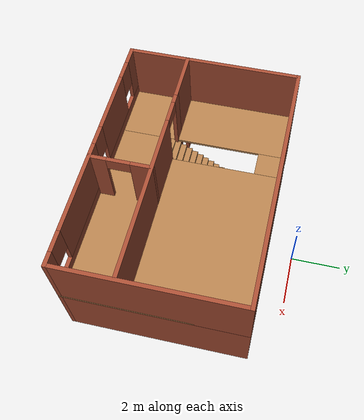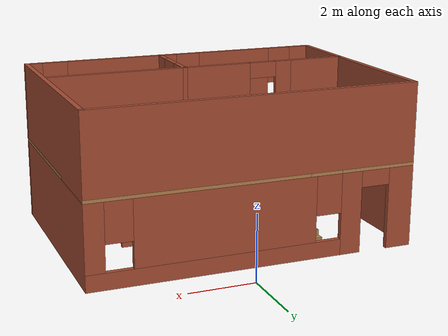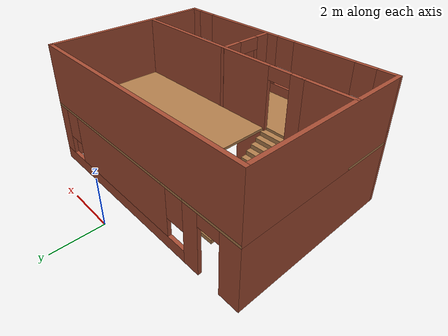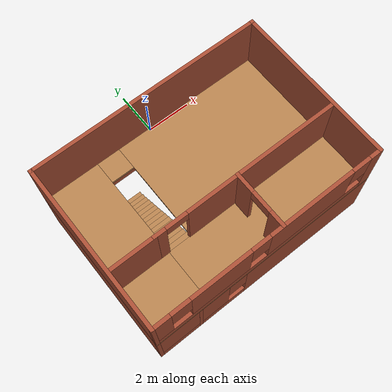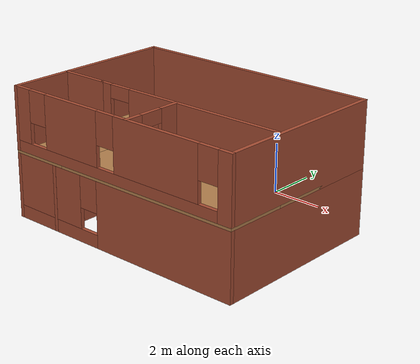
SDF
<?xml version='1.0'?>
<sdf version='1.6'>
  <model name='first-building'>
    <pose frame=''>-0.475 -4.50523 0 0 -0 0</pose>
    <link name='Floor_4'>
      <pose frame=''>0 0.000225 2.5 0 -0 0</pose>
      <visual name='Floor_4_Visual_0'>
        <pose frame=''>-3.82169 0 0.05 0 -0 0</pose>
        <geometry>
          <box>
            <size>2.35661 7.0009 0.1</size>
          </box>
        </geometry>
        <material>
          <script>
            <uri>file://media/materials/scripts/gazebo.material</uri>
            <name>Gazebo/Wood</name>
          </script>
          <ambient>1 1 1 1</ambient>
        </material>
        <meta>
          <layer>1</layer>
        </meta>
      </visual>
      <collision name='Floor_4_Collision_0'>
        <geometry>
          <box>
            <size>2.35661 7.0009 0.1</size>
          </box>
        </geometry>
        <pose frame=''>-3.82169 0 0.05 0 -0 0</pose>
      </collision>
      <visual name='Floor_4_Visual_1'>
        <pose frame=''>1.17831 -2.30879 0.05 0 -0 0</pose>
        <geometry>
          <box>
            <size>7.64339 2.38332 0.1</size>
          </box>
        </geometry>
        <material>
          <script>
            <uri>file://media/materials/scripts/gazebo.material</uri>
            <name>Gazebo/Wood</name>
          </script>
          <ambient>1 1 1 1</ambient>
        </material>
        <meta>
          <layer>1</layer>
        </meta>
      </visual>
      <collision name='Floor_4_Collision_1'>
        <geometry>
          <box>
            <size>7.64339 2.38332 0.1</size>
          </box>
        </geometry>
        <pose frame=''>1.17831 -2.30879 0.05 0 -0 0</pose>
      </collision>
      <visual name='Floor_4_Visual_2'>
        <pose frame=''>1.67831 1.19166 0.05 0 -0 0</pose>
        <geometry>
          <box>
            <size>6.64339 4.61758 0.1</size>
          </box>
        </geometry>
        <material>
          <script>
            <uri>file://media/materials/scripts/gazebo.material</uri>
            <name>Gazebo/Wood</name>
          </script>
          <ambient>1 1 1 1</ambient>
        </material>
        <meta>
          <layer>1</layer>
        </meta>
      </visual>
      <collision name='Floor_4_Collision_2'>
        <geometry>
          <box>
            <size>6.64339 4.61758 0.1</size>
          </box>
        </geometry>
        <pose frame=''>1.67831 1.19166 0.05 0 -0 0</pose>
      </collision>
      <visual name='Floor_4_Visual_3'>
        <pose frame=''>-2.14339 2.94166 0.05 0 -0 0</pose>
        <geometry>
          <box>
            <size>1 1.11758 0.1</size>
          </box>
        </geometry>
        <material>
          <script>
            <uri>file://media/materials/scripts/gazebo.material</uri>
            <name>Gazebo/Wood</name>
          </script>
          <ambient>1 1 1 1</ambient>
        </material>
        <meta>
          <layer>1</layer>
        </meta>
      </visual>
      <collision name='Floor_4_Collision_3'>
        <geometry>
          <box>
            <size>1 1.11758 0.1</size>
          </box>
        </geometry>
        <pose frame=''>-2.14339 2.94166 0.05 0 -0 0</pose>
      </collision>
    </link>
    <link name='Stairs_3'>
      <visual name='Stairs_3_Visual_0'>
        <pose frame=''>-2.14339 2.26643 0.083333 0 -0 0</pose>
        <geometry>
          <box>
            <size>1 0.233333 0.166667</size>
          </box>
        </geometry>
        <material>
          <script>
            <uri>file://media/materials/scripts/gazebo.material</uri>
            <name>Gazebo/Wood</name>
          </script>
          <ambient>1 1 1 1</ambient>
        </material>
        <meta>
          <layer>0</layer>
        </meta>
      </visual>
      <collision name='Stairs_3_Collision_0'>
        <geometry>
          <box>
            <size>1 0.233333 0.166667</size>
          </box>
        </geometry>
        <pose frame=''>-2.14339 2.26643 0.083333 0 -0 0</pose>
      </collision>
      <visual name='Stairs_3_Visual_1'>
        <pose frame=''>-2.14339 2.0331 0.25 0 -0 0</pose>
        <geometry>
          <box>
            <size>1 0.233333 0.166667</size>
          </box>
        </geometry>
        <material>
          <script>
            <uri>file://media/materials/scripts/gazebo.material</uri>
            <name>Gazebo/Wood</name>
          </script>
          <ambient>1 1 1 1</ambient>
        </material>
        <meta>
          <layer>0</layer>
        </meta>
      </visual>
      <collision name='Stairs_3_Collision_1'>
        <geometry>
          <box>
            <size>1 0.233333 0.166667</size>
          </box>
        </geometry>
        <pose frame=''>-2.14339 2.0331 0.25 0 -0 0</pose>
      </collision>
      <visual name='Stairs_3_Visual_2'>
        <pose frame=''>-2.14339 1.79976 0.416667 0 -0 0</pose>
        <geometry>
          <box>
            <size>1 0.233333 0.166667</size>
          </box>
        </geometry>
        <material>
          <script>
            <uri>file://media/materials/scripts/gazebo.material</uri>
            <name>Gazebo/Wood</name>
          </script>
          <ambient>1 1 1 1</ambient>
        </material>
        <meta>
          <layer>0</layer>
        </meta>
      </visual>
      <collision name='Stairs_3_Collision_2'>
        <geometry>
          <box>
            <size>1 0.233333 0.166667</size>
          </box>
        </geometry>
        <pose frame=''>-2.14339 1.79976 0.416667 0 -0 0</pose>
      </collision>
      <visual name='Stairs_3_Visual_3'>
        <pose frame=''>-2.14339 1.56643 0.583333 0 -0 0</pose>
        <geometry>
          <box>
            <size>1 0.233333 0.166667</size>
          </box>
        </geometry>
        <material>
          <script>
            <uri>file://media/materials/scripts/gazebo.material</uri>
            <name>Gazebo/Wood</name>
          </script>
          <ambient>1 1 1 1</ambient>
        </material>
        <meta>
          <layer>0</layer>
        </meta>
      </visual>
      <collision name='Stairs_3_Collision_3'>
        <geometry>
          <box>
            <size>1 0.233333 0.166667</size>
          </box>
        </geometry>
        <pose frame=''>-2.14339 1.56643 0.583333 0 -0 0</pose>
      </collision>
      <visual name='Stairs_3_Visual_4'>
        <pose frame=''>-2.14339 1.3331 0.75 0 -0 0</pose>
        <geometry>
          <box>
            <size>1 0.233333 0.166667</size>
          </box>
        </geometry>
        <material>
          <script>
            <uri>file://media/materials/scripts/gazebo.material</uri>
            <name>Gazebo/Wood</name>
          </script>
          <ambient>1 1 1 1</ambient>
        </material>
        <meta>
          <layer>0</layer>
        </meta>
      </visual>
      <collision name='Stairs_3_Collision_4'>
        <geometry>
          <box>
            <size>1 0.233333 0.166667</size>
          </box>
        </geometry>
        <pose frame=''>-2.14339 1.3331 0.75 0 -0 0</pose>
      </collision>
      <visual name='Stairs_3_Visual_5'>
        <pose frame=''>-2.14339 1.09976 0.916667 0 -0 0</pose>
        <geometry>
          <box>
            <size>1 0.233333 0.166667</size>
          </box>
        </geometry>
        <material>
          <script>
            <uri>file://media/materials/scripts/gazebo.material</uri>
            <name>Gazebo/Wood</name>
          </script>
          <ambient>1 1 1 1</ambient>
        </material>
        <meta>
          <layer>0</layer>
        </meta>
      </visual>
      <collision name='Stairs_3_Collision_5'>
        <geometry>
          <box>
            <size>1 0.233333 0.166667</size>
          </box>
        </geometry>
        <pose frame=''>-2.14339 1.09976 0.916667 0 -0 0</pose>
      </collision>
      <visual name='Stairs_3_Visual_6'>
        <pose frame=''>-2.14339 0.86643 1.08333 0 -0 0</pose>
        <geometry>
          <box>
            <size>1 0.233333 0.166667</size>
          </box>
        </geometry>
        <material>
          <script>
            <uri>file://media/materials/scripts/gazebo.material</uri>
            <name>Gazebo/Wood</name>
          </script>
          <ambient>1 1 1 1</ambient>
        </material>
        <meta>
          <layer>0</layer>
        </meta>
      </visual>
      <collision name='Stairs_3_Collision_6'>
        <geometry>
          <box>
            <size>1 0.233333 0.166667</size>
          </box>
        </geometry>
        <pose frame=''>-2.14339 0.86643 1.08333 0 -0 0</pose>
      </collision>
      <visual name='Stairs_3_Visual_7'>
        <pose frame=''>-2.14339 0.633097 1.25 0 -0 0</pose>
        <geometry>
          <box>
            <size>1 0.233333 0.166667</size>
          </box>
        </geometry>
        <material>
          <script>
            <uri>file://media/materials/scripts/gazebo.material</uri>
            <name>Gazebo/Wood</name>
          </script>
          <ambient>1 1 1 1</ambient>
        </material>
        <meta>
          <layer>0</layer>
        </meta>
      </visual>
      <collision name='Stairs_3_Collision_7'>
        <geometry>
          <box>
            <size>1 0.233333 0.166667</size>
          </box>
        </geometry>
        <pose frame=''>-2.14339 0.633097 1.25 0 -0 0</pose>
      </collision>
      <visual name='Stairs_3_Visual_8'>
        <pose frame=''>-2.14339 0.399763 1.41667 0 -0 0</pose>
        <geometry>
          <box>
            <size>1 0.233333 0.166667</size>
          </box>
        </geometry>
        <material>
          <script>
            <uri>file://media/materials/scripts/gazebo.material</uri>
            <name>Gazebo/Wood</name>
          </script>
          <ambient>1 1 1 1</ambient>
        </material>
        <meta>
          <layer>0</layer>
        </meta>
      </visual>
      <collision name='Stairs_3_Collision_8'>
        <geometry>
          <box>
            <size>1 0.233333 0.166667</size>
          </box>
        </geometry>
        <pose frame=''>-2.14339 0.399763 1.41667 0 -0 0</pose>
      </collision>
      <visual name='Stairs_3_Visual_9'>
        <pose frame=''>-2.14339 0.16643 1.58333 0 -0 0</pose>
        <geometry>
          <box>
            <size>1 0.233333 0.166667</size>
          </box>
        </geometry>
        <material>
          <script>
            <uri>file://media/materials/scripts/gazebo.material</uri>
            <name>Gazebo/Wood</name>
          </script>
          <ambient>1 1 1 1</ambient>
        </material>
        <meta>
          <layer>0</layer>
        </meta>
      </visual>
      <collision name='Stairs_3_Collision_9'>
        <geometry>
          <box>
            <size>1 0.233333 0.166667</size>
          </box>
        </geometry>
        <pose frame=''>-2.14339 0.16643 1.58333 0 -0 0</pose>
      </collision>
      <visual name='Stairs_3_Visual_10'>
        <pose frame=''>-2.14339 -0.066903 1.75 0 -0 0</pose>
        <geometry>
          <box>
            <size>1 0.233333 0.166667</size>
          </box>
        </geometry>
        <material>
          <script>
            <uri>file://media/materials/scripts/gazebo.material</uri>
            <name>Gazebo/Wood</name>
          </script>
          <ambient>1 1 1 1</ambient>
        </material>
        <meta>
          <layer>0</layer>
        </meta>
      </visual>
      <collision name='Stairs_3_Collision_10'>
        <geometry>
          <box>
            <size>1 0.233333 0.166667</size>
          </box>
        </geometry>
        <pose frame=''>-2.14339 -0.066903 1.75 0 -0 0</pose>
      </collision>
      <visual name='Stairs_3_Visual_11'>
        <pose frame=''>-2.14339 -0.300236 1.91667 0 -0 0</pose>
        <geometry>
          <box>
            <size>1 0.233333 0.166667</size>
          </box>
        </geometry>
        <material>
          <script>
            <uri>file://media/materials/scripts/gazebo.material</uri>
            <name>Gazebo/Wood</name>
          </script>
          <ambient>1 1 1 1</ambient>
        </material>
        <meta>
          <layer>0</layer>
        </meta>
      </visual>
      <collision name='Stairs_3_Collision_11'>
        <geometry>
          <box>
            <size>1 0.233333 0.166667</size>
          </box>
        </geometry>
        <pose frame=''>-2.14339 -0.300236 1.91667 0 -0 0</pose>
      </collision>
      <visual name='Stairs_3_Visual_12'>
        <pose frame=''>-2.14339 -0.53357 2.08333 0 -0 0</pose>
        <geometry>
          <box>
            <size>1 0.233333 0.166667</size>
          </box>
        </geometry>
        <material>
          <script>
            <uri>file://media/materials/scripts/gazebo.material</uri>
            <name>Gazebo/Wood</name>
          </script>
          <ambient>1 1 1 1</ambient>
        </material>
        <meta>
          <layer>0</layer>
        </meta>
      </visual>
      <collision name='Stairs_3_Collision_12'>
        <geometry>
          <box>
            <size>1 0.233333 0.166667</size>
          </box>
        </geometry>
        <pose frame=''>-2.14339 -0.53357 2.08333 0 -0 0</pose>
      </collision>
      <visual name='Stairs_3_Visual_13'>
        <pose frame=''>-2.14339 -0.766903 2.25 0 -0 0</pose>
        <geometry>
          <box>
            <size>1 0.233333 0.166667</size>
          </box>
        </geometry>
        <material>
          <script>
            <uri>file://media/materials/scripts/gazebo.material</uri>
            <name>Gazebo/Wood</name>
          </script>
          <ambient>1 1 1 1</ambient>
        </material>
        <meta>
          <layer>0</layer>
        </meta>
      </visual>
      <collision name='Stairs_3_Collision_13'>
        <geometry>
          <box>
            <size>1 0.233333 0.166667</size>
          </box>
        </geometry>
        <pose frame=''>-2.14339 -0.766903 2.25 0 -0 0</pose>
      </collision>
      <visual name='Stairs_3_Visual_14'>
        <pose frame=''>-2.14339 -1.00024 2.41667 0 -0 0</pose>
        <geometry>
          <box>
            <size>1 0.233333 0.166667</size>
          </box>
        </geometry>
        <material>
          <script>
            <uri>file://media/materials/scripts/gazebo.material</uri>
            <name>Gazebo/Wood</name>
          </script>
          <ambient>1 1 1 1</ambient>
        </material>
        <meta>
          <layer>0</layer>
        </meta>
      </visual>
      <collision name='Stairs_3_Collision_14'>
        <geometry>
          <box>
            <size>1 0.233333 0.166667</size>
          </box>
        </geometry>
        <pose frame=''>-2.14339 -1.00024 2.41667 0 -0 0</pose>
      </collision>
    </link>
    <link name='Wall_0'>
      <pose frame=''>0 3.42523 0 0 -0 0</pose>
      <visual name='Wall_0_Visual_0'>
        <pose frame=''>-4.59757 0 1.25 0 -0 0</pose>
        <geometry>
          <box>
            <size>0.804855 0.15 2.5</size>
          </box>
        </geometry>
        <material>
          <script>
            <uri>file://media/materials/scripts/gazebo.material</uri>
            <name>Gazebo/Bricks</name>
          </script>
          <ambient>0.913725 0.72549 0.431373 1</ambient>
        </material>
        <meta>
          <layer>0</layer>
        </meta>
      </visual>
      <collision name='Wall_0_Collision_0'>
        <geometry>
          <box>
            <size>0.804855 0.15 2.5</size>
          </box>
        </geometry>
        <pose frame=''>-4.59757 0 1.25 0 -0 0</pose>
      </collision>
      <visual name='Wall_0_Visual_1'>
        <pose frame=''>-2.9687 0 1.25 0 -0 0</pose>
        <geometry>
          <box>
            <size>0.652883 0.15 2.5</size>
          </box>
        </geometry>
        <material>
          <script>
            <uri>file://media/materials/scripts/gazebo.material</uri>
            <name>Gazebo/Bricks</name>
          </script>
          <ambient>0.913725 0.72549 0.431373 1</ambient>
        </material>
        <meta>
          <layer>0</layer>
        </meta>
      </visual>
      <collision name='Wall_0_Collision_1'>
        <geometry>
          <box>
            <size>0.652883 0.15 2.5</size>
          </box>
        </geometry>
        <pose frame=''>-2.9687 0 1.25 0 -0 0</pose>
      </collision>
      <visual name='Wall_0_Visual_2'>
        <pose frame=''>1.17887 0 0.25 0 -0 0</pose>
        <geometry>
          <box>
            <size>7.64226 0.15 0.5</size>
          </box>
        </geometry>
        <material>
          <script>
            <uri>file://media/materials/scripts/gazebo.material</uri>
            <name>Gazebo/Bricks</name>
          </script>
          <ambient>0.913725 0.72549 0.431373 1</ambient>
        </material>
        <meta>
          <layer>0</layer>
        </meta>
      </visual>
      <collision name='Wall_0_Collision_2'>
        <geometry>
          <box>
            <size>7.64226 0.15 0.5</size>
          </box>
        </geometry>
        <pose frame=''>1.17887 0 0.25 0 -0 0</pose>
      </collision>
      <visual name='Wall_0_Visual_3'>
        <pose frame=''>0.89204 0 1.5 0 -0 0</pose>
        <geometry>
          <box>
            <size>5.4686 0.15 2</size>
          </box>
        </geometry>
        <material>
          <script>
            <uri>file://media/materials/scripts/gazebo.material</uri>
            <name>Gazebo/Bricks</name>
          </script>
          <ambient>0.913725 0.72549 0.431373 1</ambient>
        </material>
        <meta>
          <layer>0</layer>
        </meta>
      </visual>
      <collision name='Wall_0_Collision_3'>
        <geometry>
          <box>
            <size>5.4686 0.15 2</size>
          </box>
        </geometry>
        <pose frame=''>0.89204 0 1.5 0 -0 0</pose>
      </collision>
      <visual name='Wall_0_Visual_4'>
        <pose frame=''>4.71317 0 1.5 0 -0 0</pose>
        <geometry>
          <box>
            <size>0.573658 0.15 2</size>
          </box>
        </geometry>
        <material>
          <script>
            <uri>file://media/materials/scripts/gazebo.material</uri>
            <name>Gazebo/Bricks</name>
          </script>
          <ambient>0.913725 0.72549 0.431373 1</ambient>
        </material>
        <meta>
          <layer>0</layer>
        </meta>
      </visual>
      <collision name='Wall_0_Collision_4'>
        <geometry>
          <box>
            <size>0.573658 0.15 2</size>
          </box>
        </geometry>
        <pose frame=''>4.71317 0 1.5 0 -0 0</pose>
      </collision>
      <visual name='Wall_0_Visual_5'>
        <pose frame=''>-2.24226 0 1.9 0 -0 0</pose>
        <geometry>
          <box>
            <size>0.8 0.15 1.2</size>
          </box>
        </geometry>
        <material>
          <script>
            <uri>file://media/materials/scripts/gazebo.material</uri>
            <name>Gazebo/Bricks</name>
          </script>
          <ambient>0.913725 0.72549 0.431373 1</ambient>
        </material>
        <meta>
          <layer>0</layer>
        </meta>
      </visual>
      <collision name='Wall_0_Collision_5'>
        <geometry>
          <box>
            <size>0.8 0.15 1.2</size>
          </box>
        </geometry>
        <pose frame=''>-2.24226 0 1.9 0 -0 0</pose>
      </collision>
      <visual name='Wall_0_Visual_6'>
        <pose frame=''>4.02634 0 1.9 0 -0 0</pose>
        <geometry>
          <box>
            <size>0.8 0.15 1.2</size>
          </box>
        </geometry>
        <material>
          <script>
            <uri>file://media/materials/scripts/gazebo.material</uri>
            <name>Gazebo/Bricks</name>
          </script>
          <ambient>0.913725 0.72549 0.431373 1</ambient>
        </material>
        <meta>
          <layer>0</layer>
        </meta>
      </visual>
      <collision name='Wall_0_Collision_6'>
        <geometry>
          <box>
            <size>0.8 0.15 1.2</size>
          </box>
        </geometry>
        <pose frame=''>4.02634 0 1.9 0 -0 0</pose>
      </collision>
      <visual name='Wall_0_Visual_7'>
        <pose frame=''>-3.74514 0 2.25 0 -0 0</pose>
        <geometry>
          <box>
            <size>0.9 0.15 0.5</size>
          </box>
        </geometry>
        <material>
          <script>
            <uri>file://media/materials/scripts/gazebo.material</uri>
            <name>Gazebo/Bricks</name>
          </script>
          <ambient>0.913725 0.72549 0.431373 1</ambient>
        </material>
        <meta>
          <layer>0</layer>
        </meta>
      </visual>
      <collision name='Wall_0_Collision_7'>
        <geometry>
          <box>
            <size>0.9 0.15 0.5</size>
          </box>
        </geometry>
        <pose frame=''>-3.74514 0 2.25 0 -0 0</pose>
      </collision>
    </link>
    <link name='Wall_2'>
      <collision name='Wall_2_Collision'>
        <geometry>
          <box>
            <size>7 0.15 2.5</size>
          </box>
        </geometry>
        <pose frame=''>0 0 1.25 0 -0 0</pose>
      </collision>
      <visual name='Wall_2_Visual'>
        <pose frame=''>0 0 1.25 0 -0 0</pose>
        <geometry>
          <box>
            <size>7 0.15 2.5</size>
          </box>
        </geometry>
        <material>
          <script>
            <uri>file://media/materials/scripts/gazebo.material</uri>
            <name>Gazebo/Bricks</name>
          </script>
          <ambient>1 0.764706 0.305882 1</ambient>
        </material>
        <meta>
          <layer>0</layer>
        </meta>
      </visual>
      <pose frame=''>4.925 0.000225 0 0 -0 -1.5708</pose>
    </link>
    <link name='Wall_3'>
      <pose frame=''>0 -3.42477 0 0 -0 3.14159</pose>
      <visual name='Wall_3_Visual_0'>
        <pose frame=''>-2.02749 0 1.25 0 -0 0</pose>
        <geometry>
          <box>
            <size>5.94502 0.15 2.5</size>
          </box>
        </geometry>
        <material>
          <script>
            <uri>file://media/materials/scripts/gazebo.material</uri>
            <name>Gazebo/Bricks</name>
          </script>
          <ambient>0.913725 0.72549 0.431373 1</ambient>
        </material>
        <meta>
          <layer>0</layer>
        </meta>
      </visual>
      <collision name='Wall_3_Collision_0'>
        <geometry>
          <box>
            <size>5.94502 0.15 2.5</size>
          </box>
        </geometry>
        <pose frame=''>-2.02749 0 1.25 0 -0 0</pose>
      </collision>
      <visual name='Wall_3_Visual_1'>
        <pose frame=''>2.97251 0 0.25 0 -0 0</pose>
        <geometry>
          <box>
            <size>4.05498 0.15 0.5</size>
          </box>
        </geometry>
        <material>
          <script>
            <uri>file://media/materials/scripts/gazebo.material</uri>
            <name>Gazebo/Bricks</name>
          </script>
          <ambient>0.913725 0.72549 0.431373 1</ambient>
        </material>
        <meta>
          <layer>0</layer>
        </meta>
      </visual>
      <collision name='Wall_3_Collision_1'>
        <geometry>
          <box>
            <size>4.05498 0.15 0.5</size>
          </box>
        </geometry>
        <pose frame=''>2.97251 0 0.25 0 -0 0</pose>
      </collision>
      <visual name='Wall_3_Visual_2'>
        <pose frame=''>3.37251 0 1.5 0 -0 0</pose>
        <geometry>
          <box>
            <size>3.25498 0.15 2</size>
          </box>
        </geometry>
        <material>
          <script>
            <uri>file://media/materials/scripts/gazebo.material</uri>
            <name>Gazebo/Bricks</name>
          </script>
          <ambient>0.913725 0.72549 0.431373 1</ambient>
        </material>
        <meta>
          <layer>0</layer>
        </meta>
      </visual>
      <collision name='Wall_3_Collision_2'>
        <geometry>
          <box>
            <size>3.25498 0.15 2</size>
          </box>
        </geometry>
        <pose frame=''>3.37251 0 1.5 0 -0 0</pose>
      </collision>
      <visual name='Wall_3_Visual_3'>
        <pose frame=''>1.34502 0 1.9 0 -0 0</pose>
        <geometry>
          <box>
            <size>0.8 0.15 1.2</size>
          </box>
        </geometry>
        <material>
          <script>
            <uri>file://media/materials/scripts/gazebo.material</uri>
            <name>Gazebo/Bricks</name>
          </script>
          <ambient>0.913725 0.72549 0.431373 1</ambient>
        </material>
        <meta>
          <layer>0</layer>
        </meta>
      </visual>
      <collision name='Wall_3_Collision_3'>
        <geometry>
          <box>
            <size>0.8 0.15 1.2</size>
          </box>
        </geometry>
        <pose frame=''>1.34502 0 1.9 0 -0 0</pose>
      </collision>
    </link>
    <link name='Wall_4'>
      <collision name='Wall_4_Collision'>
        <geometry>
          <box>
            <size>7 0.15 2.5</size>
          </box>
        </geometry>
        <pose frame=''>0 0 1.25 0 -0 0</pose>
      </collision>
      <visual name='Wall_4_Visual'>
        <pose frame=''>0 0 1.25 0 -0 0</pose>
        <geometry>
          <box>
            <size>7 0.15 2.5</size>
          </box>
        </geometry>
        <material>
          <script>
            <uri>file://media/materials/scripts/gazebo.material</uri>
            <name>Gazebo/Bricks</name>
          </script>
          <ambient>0.913725 0.72549 0.431373 1</ambient>
        </material>
        <meta>
          <layer>0</layer>
        </meta>
      </visual>
      <pose frame=''>-4.925 0.000225 0 0 -0 1.5708</pose>
    </link>
    <link name='Wall_40'>
      <collision name='Wall_40_Collision'>
        <geometry>
          <box>
            <size>10 0.15 2.5</size>
          </box>
        </geometry>
        <pose frame=''>0 0 1.25 0 -0 0</pose>
      </collision>
      <visual name='Wall_40_Visual'>
        <pose frame=''>0 0 1.25 0 -0 0</pose>
        <geometry>
          <box>
            <size>10 0.15 2.5</size>
          </box>
        </geometry>
        <material>
          <script>
            <uri>file://media/materials/scripts/gazebo.material</uri>
            <name>Gazebo/Bricks</name>
          </script>
          <ambient>1 1 1 1</ambient>
        </material>
        <meta>
          <layer>1</layer>
        </meta>
      </visual>
      <pose frame=''>0 3.42523 2.5 0 -0 0</pose>
    </link>
    <link name='Wall_41'>
      <collision name='Wall_41_Collision'>
        <geometry>
          <box>
            <size>7 0.15 2.5</size>
          </box>
        </geometry>
        <pose frame=''>0 0 1.25 0 -0 0</pose>
      </collision>
      <visual name='Wall_41_Visual'>
        <pose frame=''>0 0 1.25 0 -0 0</pose>
        <geometry>
          <box>
            <size>7 0.15 2.5</size>
          </box>
        </geometry>
        <material>
          <script>
            <uri>file://media/materials/scripts/gazebo.material</uri>
            <name>Gazebo/Bricks</name>
          </script>
          <ambient>1 1 1 1</ambient>
        </material>
        <meta>
          <layer>1</layer>
        </meta>
      </visual>
      <pose frame=''>4.925 0.000225 2.5 0 -0 -1.5708</pose>
    </link>
    <link name='Wall_42'>
      <pose frame=''>0 -3.42477 2.5 0 -0 3.14159</pose>
      <visual name='Wall_42_Visual_0'>
        <pose frame=''>-4.71993 0 1.25 0 -0 0</pose>
        <geometry>
          <box>
            <size>0.560138 0.15 2.5</size>
          </box>
        </geometry>
        <material>
          <script>
            <uri>file://media/materials/scripts/gazebo.material</uri>
            <name>Gazebo/Bricks</name>
          </script>
          <ambient>1 1 1 1</ambient>
        </material>
        <meta>
          <layer>1</layer>
        </meta>
      </visual>
      <collision name='Wall_42_Collision_0'>
        <geometry>
          <box>
            <size>0.560138 0.15 2.5</size>
          </box>
        </geometry>
        <pose frame=''>-4.71993 0 1.25 0 -0 0</pose>
      </collision>
      <visual name='Wall_42_Visual_1'>
        <pose frame=''>0.280069 0 0.25 0 -0 0</pose>
        <geometry>
          <box>
            <size>9.43986 0.15 0.5</size>
          </box>
        </geometry>
        <material>
          <script>
            <uri>file://media/materials/scripts/gazebo.material</uri>
            <name>Gazebo/Bricks</name>
          </script>
          <ambient>1 1 1 1</ambient>
        </material>
        <meta>
          <layer>1</layer>
        </meta>
      </visual>
      <collision name='Wall_42_Collision_1'>
        <geometry>
          <box>
            <size>9.43986 0.15 0.5</size>
          </box>
        </geometry>
        <pose frame=''>0.280069 0 0.25 0 -0 0</pose>
      </collision>
      <visual name='Wall_42_Visual_2'>
        <pose frame=''>-1.7885 0 1.5 0 -0 0</pose>
        <geometry>
          <box>
            <size>3.70272 0.15 2</size>
          </box>
        </geometry>
        <material>
          <script>
            <uri>file://media/materials/scripts/gazebo.material</uri>
            <name>Gazebo/Bricks</name>
          </script>
          <ambient>1 1 1 1</ambient>
        </material>
        <meta>
          <layer>1</layer>
        </meta>
      </visual>
      <collision name='Wall_42_Collision_2'>
        <geometry>
          <box>
            <size>3.70272 0.15 2</size>
          </box>
        </geometry>
        <pose frame=''>-1.7885 0 1.5 0 -0 0</pose>
      </collision>
      <visual name='Wall_42_Visual_3'>
        <pose frame=''>2.13432 0 1.5 0 -0 0</pose>
        <geometry>
          <box>
            <size>2.54293 0.15 2</size>
          </box>
        </geometry>
        <material>
          <script>
            <uri>file://media/materials/scripts/gazebo.material</uri>
            <name>Gazebo/Bricks</name>
          </script>
          <ambient>1 1 1 1</ambient>
        </material>
        <meta>
          <layer>1</layer>
        </meta>
      </visual>
      <collision name='Wall_42_Collision_3'>
        <geometry>
          <box>
            <size>2.54293 0.15 2</size>
          </box>
        </geometry>
        <pose frame=''>2.13432 0 1.5 0 -0 0</pose>
      </collision>
      <visual name='Wall_42_Visual_4'>
        <pose frame=''>4.60289 0 1.5 0 -0 0</pose>
        <geometry>
          <box>
            <size>0.79422 0.15 2</size>
          </box>
        </geometry>
        <material>
          <script>
            <uri>file://media/materials/scripts/gazebo.material</uri>
            <name>Gazebo/Bricks</name>
          </script>
          <ambient>1 1 1 1</ambient>
        </material>
        <meta>
          <layer>1</layer>
        </meta>
      </visual>
      <collision name='Wall_42_Collision_4'>
        <geometry>
          <box>
            <size>0.79422 0.15 2</size>
          </box>
        </geometry>
        <pose frame=''>4.60289 0 1.5 0 -0 0</pose>
      </collision>
      <visual name='Wall_42_Visual_5'>
        <pose frame=''>-4.03986 0 1.9 0 -0 0</pose>
        <geometry>
          <box>
            <size>0.8 0.15 1.2</size>
          </box>
        </geometry>
        <material>
          <script>
            <uri>file://media/materials/scripts/gazebo.material</uri>
            <name>Gazebo/Bricks</name>
          </script>
          <ambient>1 1 1 1</ambient>
        </material>
        <meta>
          <layer>1</layer>
        </meta>
      </visual>
      <collision name='Wall_42_Collision_5'>
        <geometry>
          <box>
            <size>0.8 0.15 1.2</size>
          </box>
        </geometry>
        <pose frame=''>-4.03986 0 1.9 0 -0 0</pose>
      </collision>
      <visual name='Wall_42_Visual_6'>
        <pose frame=''>0.462854 0 1.9 0 -0 0</pose>
        <geometry>
          <box>
            <size>0.8 0.15 1.2</size>
          </box>
        </geometry>
        <material>
          <script>
            <uri>file://media/materials/scripts/gazebo.material</uri>
            <name>Gazebo/Bricks</name>
          </script>
          <ambient>1 1 1 1</ambient>
        </material>
        <meta>
          <layer>1</layer>
        </meta>
      </visual>
      <collision name='Wall_42_Collision_6'>
        <geometry>
          <box>
            <size>0.8 0.15 1.2</size>
          </box>
        </geometry>
        <pose frame=''>0.462854 0 1.9 0 -0 0</pose>
      </collision>
      <visual name='Wall_42_Visual_7'>
        <pose frame=''>3.80578 0 1.9 0 -0 0</pose>
        <geometry>
          <box>
            <size>0.8 0.15 1.2</size>
          </box>
        </geometry>
        <material>
          <script>
            <uri>file://media/materials/scripts/gazebo.material</uri>
            <name>Gazebo/Bricks</name>
          </script>
          <ambient>1 1 1 1</ambient>
        </material>
        <meta>
          <layer>1</layer>
        </meta>
      </visual>
      <collision name='Wall_42_Collision_7'>
        <geometry>
          <box>
            <size>0.8 0.15 1.2</size>
          </box>
        </geometry>
        <pose frame=''>3.80578 0 1.9 0 -0 0</pose>
      </collision>
    </link>
    <link name='Wall_43'>
      <collision name='Wall_43_Collision'>
        <geometry>
          <box>
            <size>7 0.15 2.5</size>
          </box>
        </geometry>
        <pose frame=''>0 0 1.25 0 -0 0</pose>
      </collision>
      <visual name='Wall_43_Visual'>
        <pose frame=''>0 0 1.25 0 -0 0</pose>
        <geometry>
          <box>
            <size>7 0.15 2.5</size>
          </box>
        </geometry>
        <material>
          <script>
            <uri>file://media/materials/scripts/gazebo.material</uri>
            <name>Gazebo/Bricks</name>
          </script>
          <ambient>1 1 1 1</ambient>
        </material>
        <meta>
          <layer>1</layer>
        </meta>
      </visual>
      <pose frame=''>-4.925 0.000225 2.5 0 -0 1.5708</pose>
    </link>
    <link name='Wall_45'>
      <collision name='Wall_45_Collision'>
        <geometry>
          <box>
            <size>2 0.15 2.5</size>
          </box>
        </geometry>
        <pose frame=''>0 0 1.25 0 -0 0</pose>
      </collision>
      <visual name='Wall_45_Visual'>
        <pose frame=''>0 0 1.25 0 -0 0</pose>
        <geometry>
          <box>
            <size>2 0.15 2.5</size>
          </box>
        </geometry>
        <material>
          <script>
            <uri>file://media/materials/scripts/gazebo.material</uri>
            <name>Gazebo/Bricks</name>
          </script>
          <ambient>1 1 1 1</ambient>
        </material>
        <meta>
          <layer>1</layer>
        </meta>
      </visual>
      <pose frame=''>-3.97803 -1.07568 2.5 0 -0 3.14159</pose>
    </link>
    <link name='Wall_46'>
      <pose frame=''>0.871972 -1.07568 2.5 0 -0 0</pose>
      <visual name='Wall_46_Visual_0'>
        <pose frame=''>-3.73383 0 1.25 0 -0 0</pose>
        <geometry>
          <box>
            <size>0.53234 0.15 2.5</size>
          </box>
        </geometry>
        <material>
          <script>
            <uri>file://media/materials/scripts/gazebo.material</uri>
            <name>Gazebo/Bricks</name>
          </script>
          <ambient>1 1 1 1</ambient>
        </material>
        <meta>
          <layer>1</layer>
        </meta>
      </visual>
      <collision name='Wall_46_Collision_0'>
        <geometry>
          <box>
            <size>0.53234 0.15 2.5</size>
          </box>
        </geometry>
        <pose frame=''>-3.73383 0 1.25 0 -0 0</pose>
      </collision>
      <visual name='Wall_46_Visual_1'>
        <pose frame=''>0.71617 0 1.25 0 -0 0</pose>
        <geometry>
          <box>
            <size>6.56766 0.15 2.5</size>
          </box>
        </geometry>
        <material>
          <script>
            <uri>file://media/materials/scripts/gazebo.material</uri>
            <name>Gazebo/Bricks</name>
          </script>
          <ambient>1 1 1 1</ambient>
        </material>
        <meta>
          <layer>1</layer>
        </meta>
      </visual>
      <collision name='Wall_46_Collision_1'>
        <geometry>
          <box>
            <size>6.56766 0.15 2.5</size>
          </box>
        </geometry>
        <pose frame=''>0.71617 0 1.25 0 -0 0</pose>
      </collision>
      <visual name='Wall_46_Visual_2'>
        <pose frame=''>-3.01766 0 2.25 0 -0 0</pose>
        <geometry>
          <box>
            <size>0.9 0.15 0.5</size>
          </box>
        </geometry>
        <material>
          <script>
            <uri>file://media/materials/scripts/gazebo.material</uri>
            <name>Gazebo/Bricks</name>
          </script>
          <ambient>1 1 1 1</ambient>
        </material>
        <meta>
          <layer>1</layer>
        </meta>
      </visual>
      <collision name='Wall_46_Collision_2'>
        <geometry>
          <box>
            <size>0.9 0.15 0.5</size>
          </box>
        </geometry>
        <pose frame=''>-3.01766 0 2.25 0 -0 0</pose>
      </collision>
    </link>
    <link name='Wall_50'>
      <pose frame=''>0.492267 -2.24361 2.5 0 -0 -1.5708</pose>
      <visual name='Wall_50_Visual_0'>
        <pose frame=''>-0.812123 0 1.25 0 -0 0</pose>
        <geometry>
          <box>
            <size>0.875755 0.15 2.5</size>
          </box>
        </geometry>
        <material>
          <script>
            <uri>file://media/materials/scripts/gazebo.material</uri>
            <name>Gazebo/Bricks</name>
          </script>
          <ambient>1 1 1 1</ambient>
        </material>
        <meta>
          <layer>1</layer>
        </meta>
      </visual>
      <collision name='Wall_50_Collision_0'>
        <geometry>
          <box>
            <size>0.875755 0.15 2.5</size>
          </box>
        </geometry>
        <pose frame=''>-0.812123 0 1.25 0 -0 0</pose>
      </collision>
      <visual name='Wall_50_Visual_1'>
        <pose frame=''>0.887877 0 1.25 0 -0 0</pose>
        <geometry>
          <box>
            <size>0.724245 0.15 2.5</size>
          </box>
        </geometry>
        <material>
          <script>
            <uri>file://media/materials/scripts/gazebo.material</uri>
            <name>Gazebo/Bricks</name>
          </script>
          <ambient>1 1 1 1</ambient>
        </material>
        <meta>
          <layer>1</layer>
        </meta>
      </visual>
      <collision name='Wall_50_Collision_1'>
        <geometry>
          <box>
            <size>0.724245 0.15 2.5</size>
          </box>
        </geometry>
        <pose frame=''>0.887877 0 1.25 0 -0 0</pose>
      </collision>
      <visual name='Wall_50_Visual_2'>
        <pose frame=''>0.075755 0 2.25 0 -0 0</pose>
        <geometry>
          <box>
            <size>0.9 0.15 0.5</size>
          </box>
        </geometry>
        <material>
          <script>
            <uri>file://media/materials/scripts/gazebo.material</uri>
            <name>Gazebo/Bricks</name>
          </script>
          <ambient>1 1 1 1</ambient>
        </material>
        <meta>
          <layer>1</layer>
        </meta>
      </visual>
      <collision name='Wall_50_Collision_2'>
        <geometry>
          <box>
            <size>0.9 0.15 0.5</size>
          </box>
        </geometry>
        <pose frame=''>0.075755 0 2.25 0 -0 0</pose>
      </collision>
    </link>
    <link name='Wall_54'>
      <pose frame=''>0.871972 -1.07568 0 0 -0 0</pose>
      <visual name='Wall_54_Visual_0'>
        <pose frame=''>-2.63638 0 1.25 0 -0 0</pose>
        <geometry>
          <box>
            <size>2.72725 0.15 2.5</size>
          </box>
        </geometry>
        <material>
          <script>
            <uri>file://media/materials/scripts/gazebo.material</uri>
            <name>Gazebo/Bricks</name>
          </script>
          <ambient>0.533333 0.541176 0.521569 1</ambient>
        </material>
        <meta>
          <layer>0</layer>
        </meta>
      </visual>
      <collision name='Wall_54_Collision_0'>
        <geometry>
          <box>
            <size>2.72725 0.15 2.5</size>
          </box>
        </geometry>
        <pose frame=''>-2.63638 0 1.25 0 -0 0</pose>
      </collision>
      <visual name='Wall_54_Visual_1'>
        <pose frame=''>0.951847 0 1.25 0 -0 0</pose>
        <geometry>
          <box>
            <size>2.64919 0.15 2.5</size>
          </box>
        </geometry>
        <material>
          <script>
            <uri>file://media/materials/scripts/gazebo.material</uri>
            <name>Gazebo/Bricks</name>
          </script>
          <ambient>0.533333 0.541176 0.521569 1</ambient>
        </material>
        <meta>
          <layer>0</layer>
        </meta>
      </visual>
      <collision name='Wall_54_Collision_1'>
        <geometry>
          <box>
            <size>2.64919 0.15 2.5</size>
          </box>
        </geometry>
        <pose frame=''>0.951847 0 1.25 0 -0 0</pose>
      </collision>
      <visual name='Wall_54_Visual_2'>
        <pose frame=''>3.58822 0 1.25 0 -0 0</pose>
        <geometry>
          <box>
            <size>0.823556 0.15 2.5</size>
          </box>
        </geometry>
        <material>
          <script>
            <uri>file://media/materials/scripts/gazebo.material</uri>
            <name>Gazebo/Bricks</name>
          </script>
          <ambient>0.533333 0.541176 0.521569 1</ambient>
        </material>
        <meta>
          <layer>0</layer>
        </meta>
      </visual>
      <collision name='Wall_54_Collision_2'>
        <geometry>
          <box>
            <size>0.823556 0.15 2.5</size>
          </box>
        </geometry>
        <pose frame=''>3.58822 0 1.25 0 -0 0</pose>
      </collision>
      <visual name='Wall_54_Visual_3'>
        <pose frame=''>-0.822749 0 2.25 0 -0 0</pose>
        <geometry>
          <box>
            <size>0.9 0.15 0.5</size>
          </box>
        </geometry>
        <material>
          <script>
            <uri>file://media/materials/scripts/gazebo.material</uri>
            <name>Gazebo/Bricks</name>
          </script>
          <ambient>0.533333 0.541176 0.521569 1</ambient>
        </material>
        <meta>
          <layer>0</layer>
        </meta>
      </visual>
      <collision name='Wall_54_Collision_3'>
        <geometry>
          <box>
            <size>0.9 0.15 0.5</size>
          </box>
        </geometry>
        <pose frame=''>-0.822749 0 2.25 0 -0 0</pose>
      </collision>
      <visual name='Wall_54_Visual_4'>
        <pose frame=''>2.72644 0 2.25 0 -0 0</pose>
        <geometry>
          <box>
            <size>0.9 0.15 0.5</size>
          </box>
        </geometry>
        <material>
          <script>
            <uri>file://media/materials/scripts/gazebo.material</uri>
            <name>Gazebo/Bricks</name>
          </script>
          <ambient>0.533333 0.541176 0.521569 1</ambient>
        </material>
        <meta>
          <layer>0</layer>
        </meta>
      </visual>
      <collision name='Wall_54_Collision_4'>
        <geometry>
          <box>
            <size>0.9 0.15 0.5</size>
          </box>
        </geometry>
        <pose frame=''>2.72644 0 2.25 0 -0 0</pose>
      </collision>
    </link>
    <link name='Wall_56'>
      <collision name='Wall_56_Collision'>
        <geometry>
          <box>
            <size>2.5 0.15 2.5</size>
          </box>
        </geometry>
        <pose frame=''>0 0 1.25 0 -0 0</pose>
      </collision>
      <visual name='Wall_56_Visual'>
        <pose frame=''>0 0 1.25 0 -0 0</pose>
        <geometry>
          <box>
            <size>2.5 0.15 2.5</size>
          </box>
        </geometry>
        <material>
          <script>
            <uri>file://media/materials/scripts/gazebo.material</uri>
            <name>Gazebo/Bricks</name>
          </script>
          <ambient>0.913725 0.72549 0.431373 1</ambient>
        </material>
        <meta>
          <layer>0</layer>
        </meta>
      </visual>
      <pose frame=''>1.87789 -2.24873 0 0 -0 -1.5708</pose>
    </link>
    <link name='Wall_61'>
      <collision name='Wall_61_Collision'>
        <geometry>
          <box>
            <size>0.15 0.15 2.5</size>
          </box>
        </geometry>
        <pose frame=''>0 0 1.25 0 -0 0</pose>
      </collision>
      <visual name='Wall_61_Visual'>
        <pose frame=''>0 0 1.25 0 -0 0</pose>
        <geometry>
          <box>
            <size>0.15 0.15 2.5</size>
          </box>
        </geometry>
        <material>
          <script>
            <uri>file://media/materials/scripts/gazebo.material</uri>
            <name>Gazebo/Grey</name>
          </script>
          <ambient>0.913725 0.72549 0.431373 1</ambient>
        </material>
        <meta>
          <layer>0</layer>
        </meta>
      </visual>
      <pose frame=''>1.81653 1.52274 0 0 -0 0</pose>
    </link>
    <link name='Wall_65'>
      <collision name='Wall_65_Collision'>
        <geometry>
          <box>
            <size>3 0.15 2.5</size>
          </box>
        </geometry>
        <pose frame=''>0 0 1.25 0 -0 0</pose>
      </collision>
      <visual name='Wall_65_Visual'>
        <pose frame=''>0 0 1.25 0 -0 0</pose>
        <geometry>
          <box>
            <size>3 0.15 2.5</size>
          </box>
        </geometry>
        <material>
          <script>
            <uri>file://media/materials/scripts/gazebo.material</uri>
            <name>Gazebo/Bricks</name>
          </script>
          <ambient>0.913725 0.72549 0.431373 1</ambient>
        </material>
        <meta>
          <layer>0</layer>
        </meta>
      </visual>
      <pose frame=''>1.77916 1.9327 0 0 -0 -1.5708</pose>
    </link>
    <link name='Wall_66'>
      <pose frame=''>3.32916 0.507696 0 0 -0 0</pose>
      <visual name='Wall_66_Visual_0'>
        <pose frame=''>-0.919698 0 1.25 0 -0 0</pose>
        <geometry>
          <box>
            <size>1.41061 0.15 2.5</size>
          </box>
        </geometry>
        <material>
          <script>
            <uri>file://media/materials/scripts/gazebo.material</uri>
            <name>Gazebo/Bricks</name>
          </script>
          <ambient>0.913725 0.72549 0.431373 1</ambient>
        </material>
        <meta>
          <layer>0</layer>
        </meta>
      </visual>
      <collision name='Wall_66_Collision_0'>
        <geometry>
          <box>
            <size>1.41061 0.15 2.5</size>
          </box>
        </geometry>
        <pose frame=''>-0.919698 0 1.25 0 -0 0</pose>
      </collision>
      <visual name='Wall_66_Visual_1'>
        <pose frame=''>1.1553 0 1.25 0 -0 0</pose>
        <geometry>
          <box>
            <size>0.939395 0.15 2.5</size>
          </box>
        </geometry>
        <material>
          <script>
            <uri>file://media/materials/scripts/gazebo.material</uri>
            <name>Gazebo/Bricks</name>
          </script>
          <ambient>0.913725 0.72549 0.431373 1</ambient>
        </material>
        <meta>
          <layer>0</layer>
        </meta>
      </visual>
      <collision name='Wall_66_Collision_1'>
        <geometry>
          <box>
            <size>0.939395 0.15 2.5</size>
          </box>
        </geometry>
        <pose frame=''>1.1553 0 1.25 0 -0 0</pose>
      </collision>
      <visual name='Wall_66_Visual_2'>
        <pose frame=''>0.235605 0 2.25 0 -0 0</pose>
        <geometry>
          <box>
            <size>0.9 0.15 0.5</size>
          </box>
        </geometry>
        <material>
          <script>
            <uri>file://media/materials/scripts/gazebo.material</uri>
            <name>Gazebo/Bricks</name>
          </script>
          <ambient>0.913725 0.72549 0.431373 1</ambient>
        </material>
        <meta>
          <layer>0</layer>
        </meta>
      </visual>
      <collision name='Wall_66_Collision_2'>
        <geometry>
          <box>
            <size>0.9 0.15 0.5</size>
          </box>
        </geometry>
        <pose frame=''>0.235605 0 2.25 0 -0 0</pose>
      </collision>
    </link>
    <link name='Wall_8'>
      <collision name='Wall_8_Collision'>
        <geometry>
          <box>
            <size>2.5 0.15 2.5</size>
          </box>
        </geometry>
        <pose frame=''>0 0 1.25 0 -0 0</pose>
      </collision>
      <visual name='Wall_8_Visual'>
        <pose frame=''>0 0 1.25 0 -0 0</pose>
        <geometry>
          <box>
            <size>2.5 0.15 2.5</size>
          </box>
        </geometry>
        <material>
          <script>
            <uri>file://media/materials/scripts/gazebo.material</uri>
            <name>Gazebo/Bricks</name>
          </script>
          <ambient>0.913725 0.72549 0.431373 1</ambient>
        </material>
        <meta>
          <layer>0</layer>
        </meta>
      </visual>
      <pose frame=''>-3.05303 -2.25068 0 0 -0 1.5708</pose>
    </link>
    <link name='Wall_9'>
      <pose frame=''>-3.97803 -1.07568 0 0 -0 3.14159</pose>
      <visual name='Wall_9_Visual_0'>
        <pose frame=''>-0.861216 0 1.25 0 -0 0</pose>
        <geometry>
          <box>
            <size>0.277568 0.15 2.5</size>
          </box>
        </geometry>
        <material>
          <script>
            <uri>file://media/materials/scripts/gazebo.material</uri>
            <name>Gazebo/Bricks</name>
          </script>
          <ambient>0.913725 0.72549 0.431373 1</ambient>
        </material>
        <meta>
          <layer>0</layer>
        </meta>
      </visual>
      <collision name='Wall_9_Collision_0'>
        <geometry>
          <box>
            <size>0.277568 0.15 2.5</size>
          </box>
        </geometry>
        <pose frame=''>-0.861216 0 1.25 0 -0 0</pose>
      </collision>
      <visual name='Wall_9_Visual_1'>
        <pose frame=''>0.588784 0 1.25 0 -0 0</pose>
        <geometry>
          <box>
            <size>0.822432 0.15 2.5</size>
          </box>
        </geometry>
        <material>
          <script>
            <uri>file://media/materials/scripts/gazebo.material</uri>
            <name>Gazebo/Bricks</name>
          </script>
          <ambient>0.913725 0.72549 0.431373 1</ambient>
        </material>
        <meta>
          <layer>0</layer>
        </meta>
      </visual>
      <collision name='Wall_9_Collision_1'>
        <geometry>
          <box>
            <size>0.822432 0.15 2.5</size>
          </box>
        </geometry>
        <pose frame=''>0.588784 0 1.25 0 -0 0</pose>
      </collision>
      <visual name='Wall_9_Visual_2'>
        <pose frame=''>-0.272432 0 2.25 0 -0 0</pose>
        <geometry>
          <box>
            <size>0.9 0.15 0.5</size>
          </box>
        </geometry>
        <material>
          <script>
            <uri>file://media/materials/scripts/gazebo.material</uri>
            <name>Gazebo/Bricks</name>
          </script>
          <ambient>0.913725 0.72549 0.431373 1</ambient>
        </material>
        <meta>
          <layer>0</layer>
        </meta>
      </visual>
      <collision name='Wall_9_Collision_2'>
        <geometry>
          <box>
            <size>0.9 0.15 0.5</size>
          </box>
        </geometry>
        <pose frame=''>-0.272432 0 2.25 0 -0 0</pose>
      </collision>
    </link>
    <static>1</static>
  </model>
</sdf>
